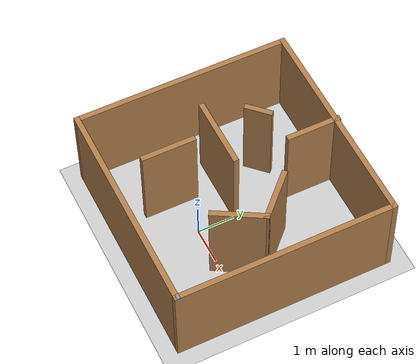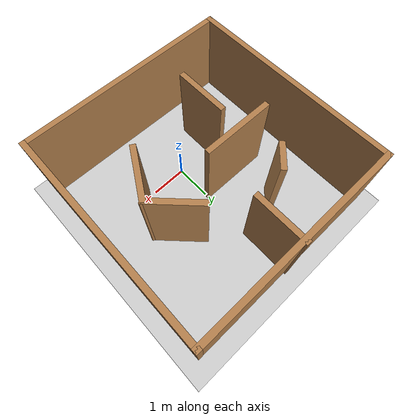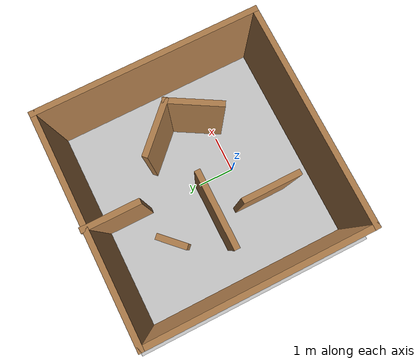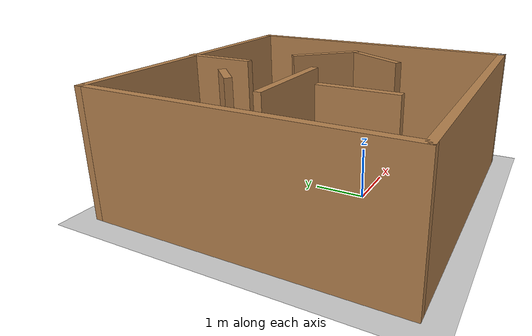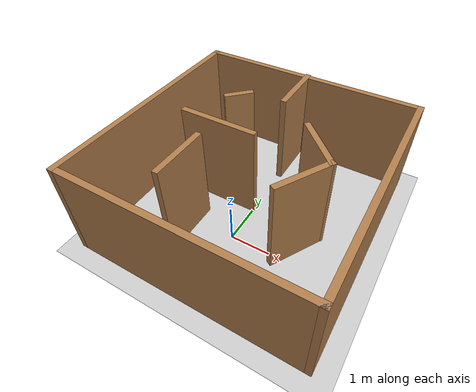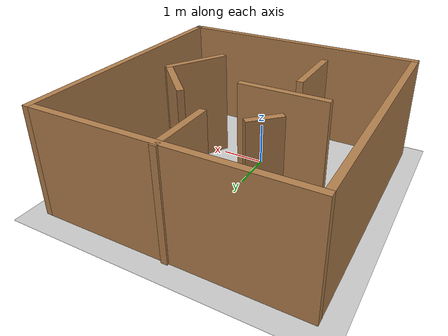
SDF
<sdf version='1.7'>
  <world name='default'>
    <light name='sun' type='directional'>
      <cast_shadows>1</cast_shadows>
      <pose>0 0 10 0 -0 0</pose>
      <diffuse>0.8 0.8 0.8 1</diffuse>
      <specular>0.2 0.2 0.2 1</specular>
      <attenuation>
        <range>1000</range>
        <constant>0.9</constant>
        <linear>0.01</linear>
        <quadratic>0.001</quadratic>
      </attenuation>
      <direction>-0.5 0.1 -0.9</direction>
      <spot>
        <inner_angle>0</inner_angle>
        <outer_angle>0</outer_angle>
        <falloff>0</falloff>
      </spot>
    </light>
    <model name='ground_plane'>
      <static>1</static>
      <link name='link'>
        <collision name='collision'>
          <geometry>
            <plane>
              <normal>0 0 1</normal>
              <size>100 100</size>
            </plane>
          </geometry>
          <surface>
            <contact>
              <collide_bitmask>65535</collide_bitmask>
              <ode/>
            </contact>
            <friction>
              <ode>
                <mu>100</mu>
                <mu2>50</mu2>
              </ode>
              <torsional>
                <ode/>
              </torsional>
            </friction>
            <bounce/>
          </surface>
          <max_contacts>10</max_contacts>
        </collision>
        <visual name='visual'>
          <cast_shadows>0</cast_shadows>
          <geometry>
            <plane>
              <normal>0 0 1</normal>
              <size>100 100</size>
            </plane>
          </geometry>
          <material>
            <script>
              <uri>file://media/materials/scripts/gazebo.material</uri>
              <name>Gazebo/Grey</name>
            </script>
          </material>
        </visual>
        <self_collide>0</self_collide>
        <enable_wind>0</enable_wind>
        <kinematic>0</kinematic>
      </link>
    </model>
    <gravity>0 0 -9.8</gravity>
    <magnetic_field>6e-06 2.3e-05 -4.2e-05</magnetic_field>
    <atmosphere type='adiabatic'/>
    <physics type='ode'>
      <max_step_size>0.001</max_step_size>
      <real_time_factor>1</real_time_factor>
      <real_time_update_rate>1000</real_time_update_rate>
    </physics>
    <scene>
      <ambient>0.4 0.4 0.4 1</ambient>
      <background>0.7 0.7 0.7 1</background>
      <shadows>1</shadows>
    </scene>
    <wind/>
    <spherical_coordinates>
      <surface_model>EARTH_WGS84</surface_model>
      <latitude_deg>0</latitude_deg>
      <longitude_deg>0</longitude_deg>
      <elevation>0</elevation>
      <heading_deg>0</heading_deg>
    </spherical_coordinates>
    <model name='little_room_walls'>
      <pose>1.0 1.0 0 0 -0 0</pose>
      <link name='Wall_1'>
        <collision name='Wall_1_Collision'>
          <geometry>
            <box>
              <size>6 0.15 2.5</size>
            </box>
          </geometry>
          <pose>0 0 1.25 0 -0 0</pose>
          <max_contacts>10</max_contacts>
          <surface>
            <contact>
              <ode/>
            </contact>
            <bounce/>
            <friction>
              <torsional>
                <ode/>
              </torsional>
              <ode/>
            </friction>
          </surface>
        </collision>
        <visual name='Wall_1_Visual'>
          <pose>0 0 1.25 0 -0 0</pose>
          <geometry>
            <box>
              <size>6 0.15 2.5</size>
            </box>
          </geometry>
          <material>
            <script>
              <uri>file://media/materials/scripts/gazebo.material</uri>
              <name>Gazebo/Wood</name>
            </script>
            <ambient>1 1 1 1</ambient>
          </material>
          <meta>
            <layer>0</layer>
          </meta>
        </visual>
        <pose>-0.9875 -2.94611 0 0 -0 0</pose>
        <self_collide>0</self_collide>
        <enable_wind>0</enable_wind>
        <kinematic>0</kinematic>
      </link>
      <link name='Wall_10'>
        <collision name='Wall_10_Collision'>
          <geometry>
            <box>
              <size>2 0.15 2.5</size>
            </box>
          </geometry>
          <pose>0 0 1.25 0 -0 0</pose>
          <max_contacts>10</max_contacts>
          <surface>
            <contact>
              <ode/>
            </contact>
            <bounce/>
            <friction>
              <torsional>
                <ode/>
              </torsional>
              <ode/>
            </friction>
          </surface>
        </collision>
        <visual name='Wall_10_Visual'>
          <pose>0 0 1.25 0 -0 0</pose>
          <geometry>
            <box>
              <size>2 0.15 2.5</size>
            </box>
          </geometry>
          <material>
            <script>
              <uri>file://media/materials/scripts/gazebo.material</uri>
              <name>Gazebo/Wood</name>
            </script>
            <ambient>1 1 1 1</ambient>
          </material>
          <meta>
            <layer>0</layer>
          </meta>
        </visual>
        <pose>-1.97078 0.070633 0 0 -0 0</pose>
        <self_collide>0</self_collide>
        <enable_wind>0</enable_wind>
        <kinematic>0</kinematic>
      </link>
      <link name='Wall_12'>
        <collision name='Wall_12_Collision'>
          <geometry>
            <box>
              <size>1.5 0.15 2.5</size>
            </box>
          </geometry>
          <pose>0 0 1.25 0 -0 0</pose>
          <max_contacts>10</max_contacts>
          <surface>
            <contact>
              <ode/>
            </contact>
            <bounce/>
            <friction>
              <torsional>
                <ode/>
              </torsional>
              <ode/>
            </friction>
          </surface>
        </collision>
        <visual name='Wall_12_Visual'>
          <pose>0 0 1.25 0 -0 0</pose>
          <geometry>
            <box>
              <size>1.5 0.15 2.5</size>
            </box>
          </geometry>
          <material>
            <script>
              <uri>file://media/materials/scripts/gazebo.material</uri>
              <name>Gazebo/Wood</name>
            </script>
            <ambient>1 1 1 1</ambient>
          </material>
          <meta>
            <layer>0</layer>
          </meta>
        </visual>
        <pose>0.365226 0.480452 0 0 -0 -0.785398</pose>
        <self_collide>0</self_collide>
        <enable_wind>0</enable_wind>
        <kinematic>0</kinematic>
      </link>
      <link name='Wall_13'>
        <collision name='Wall_13_Collision'>
          <geometry>
            <box>
              <size>1.5 0.15 2.5</size>
            </box>
          </geometry>
          <pose>0 0 1.25 0 -0 0</pose>
          <max_contacts>10</max_contacts>
          <surface>
            <contact>
              <ode/>
            </contact>
            <bounce/>
            <friction>
              <torsional>
                <ode/>
              </torsional>
              <ode/>
            </friction>
          </surface>
        </collision>
        <visual name='Wall_13_Visual'>
          <pose>0 0 1.25 0 -0 0</pose>
          <geometry>
            <box>
              <size>1.5 0.15 2.5</size>
            </box>
          </geometry>
          <material>
            <script>
              <uri>file://media/materials/scripts/gazebo.material</uri>
              <name>Gazebo/Wood</name>
            </script>
            <ambient>1 1 1 1</ambient>
          </material>
          <meta>
            <layer>0</layer>
          </meta>
        </visual>
        <pose>0.505023 -0.581412 0 0 -0 -2.0944</pose>
        <self_collide>0</self_collide>
        <enable_wind>0</enable_wind>
        <kinematic>0</kinematic>
      </link>
      <link name='Wall_15'>
        <collision name='Wall_15_Collision'>
          <geometry>
            <box>
              <size>1.5 0.15 2.5</size>
            </box>
          </geometry>
          <pose>0 0 1.25 0 -0 0</pose>
          <max_contacts>10</max_contacts>
          <surface>
            <contact>
              <ode/>
            </contact>
            <bounce/>
            <friction>
              <torsional>
                <ode/>
              </torsional>
              <ode/>
            </friction>
          </surface>
        </collision>
        <visual name='Wall_15_Visual'>
          <pose>0 0 1.25 0 -0 0</pose>
          <geometry>
            <box>
              <size>1.5 0.15 2.5</size>
            </box>
          </geometry>
          <material>
            <script>
              <uri>file://media/materials/scripts/gazebo.material</uri>
              <name>Gazebo/Wood</name>
            </script>
            <ambient>1 1 1 1</ambient>
          </material>
          <meta>
            <layer>0</layer>
          </meta>
        </visual>
        <pose>-2.06985 -1.27735 0 0 -0 -1.5708</pose>
        <self_collide>0</self_collide>
        <enable_wind>0</enable_wind>
        <kinematic>0</kinematic>
      </link>
      <link name='Wall_17'>
        <collision name='Wall_17_Collision'>
          <geometry>
            <box>
              <size>0.75 0.15 2.5</size>
            </box>
          </geometry>
          <pose>0 0 1.25 0 -0 0</pose>
          <max_contacts>10</max_contacts>
          <surface>
            <contact>
              <ode/>
            </contact>
            <bounce/>
            <friction>
              <torsional>
                <ode/>
              </torsional>
              <ode/>
            </friction>
          </surface>
        </collision>
        <visual name='Wall_17_Visual'>
          <pose>0 0 1.25 0 -0 0</pose>
          <geometry>
            <box>
              <size>0.75 0.15 2.5</size>
            </box>
          </geometry>
          <material>
            <script>
              <uri>file://media/materials/scripts/gazebo.material</uri>
              <name>Gazebo/Wood</name>
            </script>
            <ambient>1 1 1 1</ambient>
          </material>
          <meta>
            <layer>0</layer>
          </meta>
        </visual>
        <pose>-2.15962 1.29624 0 0 -0 -2.35619</pose>
        <self_collide>0</self_collide>
        <enable_wind>0</enable_wind>
        <kinematic>0</kinematic>
      </link>
      <link name='Wall_2'>
        <collision name='Wall_2_Collision'>
          <geometry>
            <box>
              <size>0.15 0.15 2.5</size>
            </box>
          </geometry>
          <pose>0 0 1.25 0 -0 0</pose>
          <max_contacts>10</max_contacts>
          <surface>
            <contact>
              <ode/>
            </contact>
            <bounce/>
            <friction>
              <torsional>
                <ode/>
              </torsional>
              <ode/>
            </friction>
          </surface>
        </collision>
        <visual name='Wall_2_Visual'>
          <pose>0 0 1.25 0 -0 0</pose>
          <geometry>
            <box>
              <size>0.15 0.15 2.5</size>
            </box>
          </geometry>
          <material>
            <script>
              <uri>file://media/materials/scripts/gazebo.material</uri>
              <name>Gazebo/Grey</name>
            </script>
            <ambient>1 1 1 1</ambient>
          </material>
          <meta>
            <layer>0</layer>
          </meta>
        </visual>
        <pose>1.9375 -2.94611 0 0 -0 0</pose>
        <self_collide>0</self_collide>
        <enable_wind>0</enable_wind>
        <kinematic>0</kinematic>
      </link>
      <link name='Wall_3'>
        <collision name='Wall_3_Collision'>
          <geometry>
            <box>
              <size>6 0.15 2.5</size>
            </box>
          </geometry>
          <pose>0 0 1.25 0 -0 0</pose>
          <max_contacts>10</max_contacts>
          <surface>
            <contact>
              <ode/>
            </contact>
            <bounce/>
            <friction>
              <torsional>
                <ode/>
              </torsional>
              <ode/>
            </friction>
          </surface>
        </collision>
        <visual name='Wall_3_Visual'>
          <pose>0 0 1.25 0 -0 0</pose>
          <geometry>
            <box>
              <size>6 0.15 2.5</size>
            </box>
          </geometry>
          <material>
            <script>
              <uri>file://media/materials/scripts/gazebo.material</uri>
              <name>Gazebo/Wood</name>
            </script>
            <ambient>1 1 1 1</ambient>
          </material>
          <meta>
            <layer>0</layer>
          </meta>
        </visual>
        <pose>1.9375 -0.021114 0 0 -0 1.5708</pose>
        <self_collide>0</self_collide>
        <enable_wind>0</enable_wind>
        <kinematic>0</kinematic>
      </link>
      <link name='Wall_4'>
        <collision name='Wall_4_Collision'>
          <geometry>
            <box>
              <size>6 0.15 2.5</size>
            </box>
          </geometry>
          <pose>0 0 1.25 0 -0 0</pose>
          <max_contacts>10</max_contacts>
          <surface>
            <contact>
              <ode/>
            </contact>
            <bounce/>
            <friction>
              <torsional>
                <ode/>
              </torsional>
              <ode/>
            </friction>
          </surface>
        </collision>
        <visual name='Wall_4_Visual'>
          <pose>0 0 1.25 0 -0 0</pose>
          <geometry>
            <box>
              <size>6 0.15 2.5</size>
            </box>
          </geometry>
          <material>
            <script>
              <uri>file://media/materials/scripts/gazebo.material</uri>
              <name>Gazebo/Wood</name>
            </script>
            <ambient>1 1 1 1</ambient>
          </material>
          <meta>
            <layer>0</layer>
          </meta>
        </visual>
        <pose>-0.9875 2.90389 0 0 -0 3.14159</pose>
        <self_collide>0</self_collide>
        <enable_wind>0</enable_wind>
        <kinematic>0</kinematic>
      </link>
      <link name='Wall_5'>
        <collision name='Wall_5_Collision'>
          <geometry>
            <box>
              <size>6 0.15 2.5</size>
            </box>
          </geometry>
          <pose>0 0 1.25 0 -0 0</pose>
          <max_contacts>10</max_contacts>
          <surface>
            <contact>
              <ode/>
            </contact>
            <bounce/>
            <friction>
              <torsional>
                <ode/>
              </torsional>
              <ode/>
            </friction>
          </surface>
        </collision>
        <visual name='Wall_5_Visual'>
          <pose>0 0 1.25 0 -0 0</pose>
          <geometry>
            <box>
              <size>6 0.15 2.5</size>
            </box>
          </geometry>
          <material>
            <script>
              <uri>file://media/materials/scripts/gazebo.material</uri>
              <name>Gazebo/Wood</name>
            </script>
            <ambient>1 1 1 1</ambient>
          </material>
          <meta>
            <layer>0</layer>
          </meta>
        </visual>
        <pose>-3.9125 -0.021114 0 0 -0 -1.5708</pose>
        <self_collide>0</self_collide>
        <enable_wind>0</enable_wind>
        <kinematic>0</kinematic>
      </link>
      <link name='Wall_8'>
        <collision name='Wall_8_Collision'>
          <geometry>
            <box>
              <size>1.5 0.15 2.5</size>
            </box>
          </geometry>
          <pose>0 0 1.25 0 -0 0</pose>
          <max_contacts>10</max_contacts>
          <surface>
            <contact>
              <ode/>
            </contact>
            <bounce/>
            <friction>
              <torsional>
                <ode/>
              </torsional>
              <ode/>
            </friction>
          </surface>
        </collision>
        <visual name='Wall_8_Visual'>
          <pose>0 0 1.25 0 -0 0</pose>
          <geometry>
            <box>
              <size>1.5 0.15 2.5</size>
            </box>
          </geometry>
          <material>
            <script>
              <uri>file://media/materials/scripts/gazebo.material</uri>
              <name>Gazebo/Wood</name>
            </script>
            <ambient>1 1 1 1</ambient>
          </material>
          <meta>
            <layer>0</layer>
          </meta>
        </visual>
        <pose>-1.02978 2.27111 0 0 -0 -1.5708</pose>
        <self_collide>0</self_collide>
        <enable_wind>0</enable_wind>
        <kinematic>0</kinematic>
      </link>
      <static>1</static>
    </model>

    <gui fullscreen='0'>
      <camera name='user_camera'>
        <pose>-0.168816 -18.4356 28.676 0 0.9098 1.59621</pose>
        <view_controller>orbit</view_controller>
        <projection_type>perspective</projection_type>
      </camera>
    </gui>
  </world>
</sdf>
